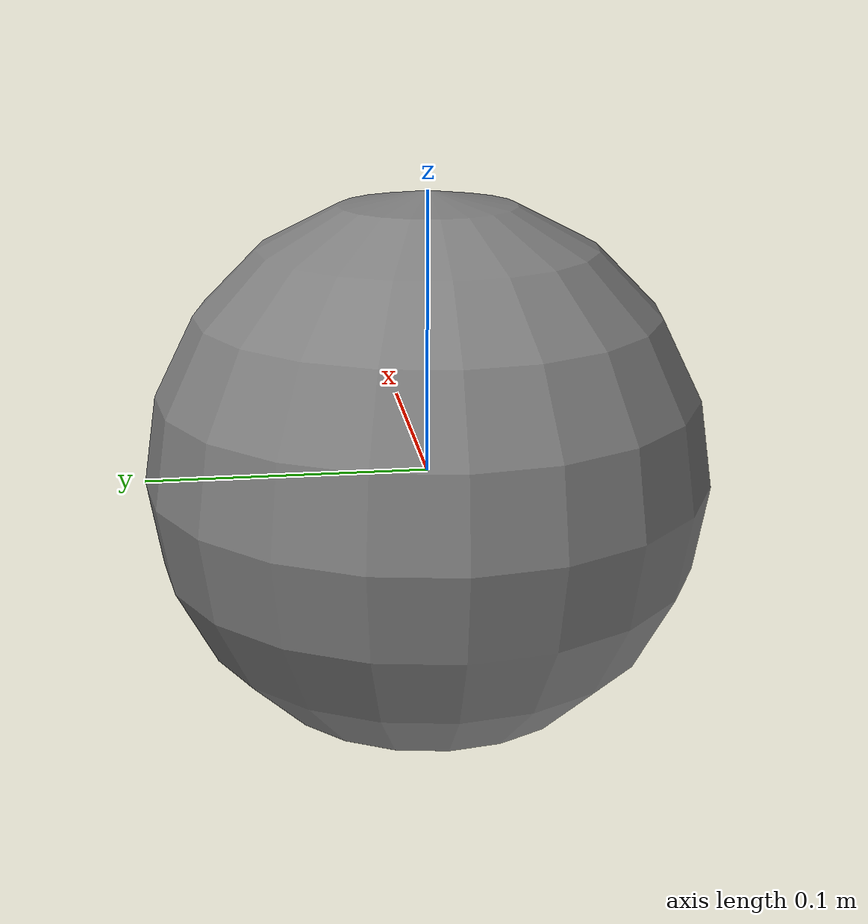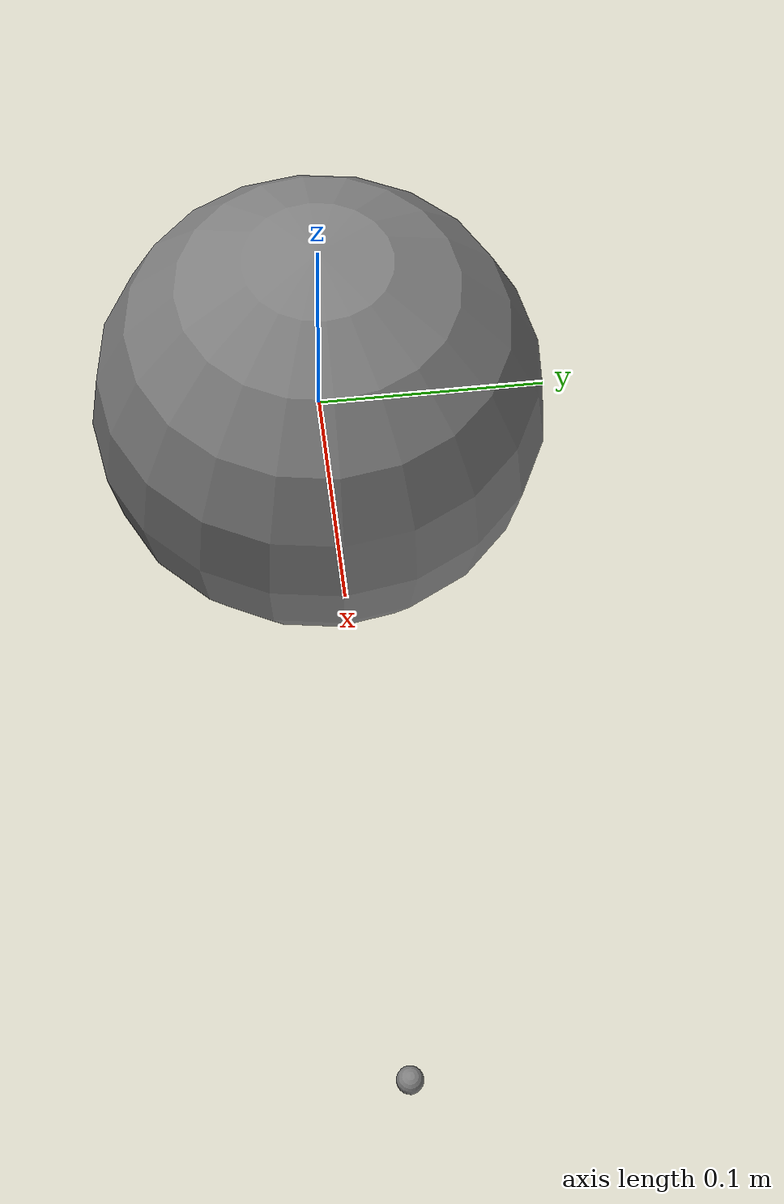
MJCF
<mujoco>
      <option gravity="0 0 0"/>
      <worldbody>
        <body name="b1" pos="0 0 0">
          <joint name="j1" type="hinge" axis="0 0 1"/>
          <geom type="sphere" size="0.1" mass="1.0"/>
          <site name="s1" pos="0.3 0 0"/>
        </body>
      </worldbody>
      <sensor>
        <velocimeter site="s1"/>
      </sensor>
    </mujoco>
